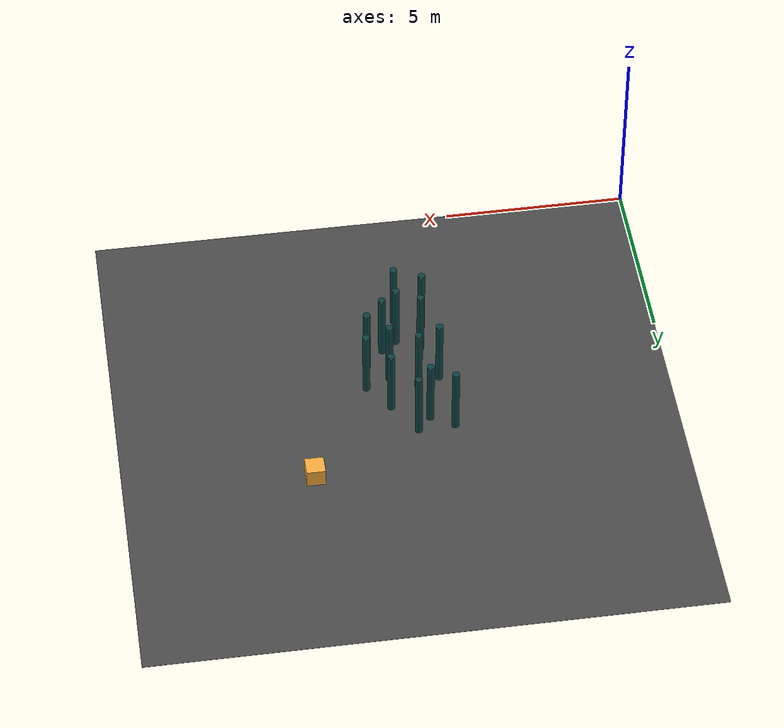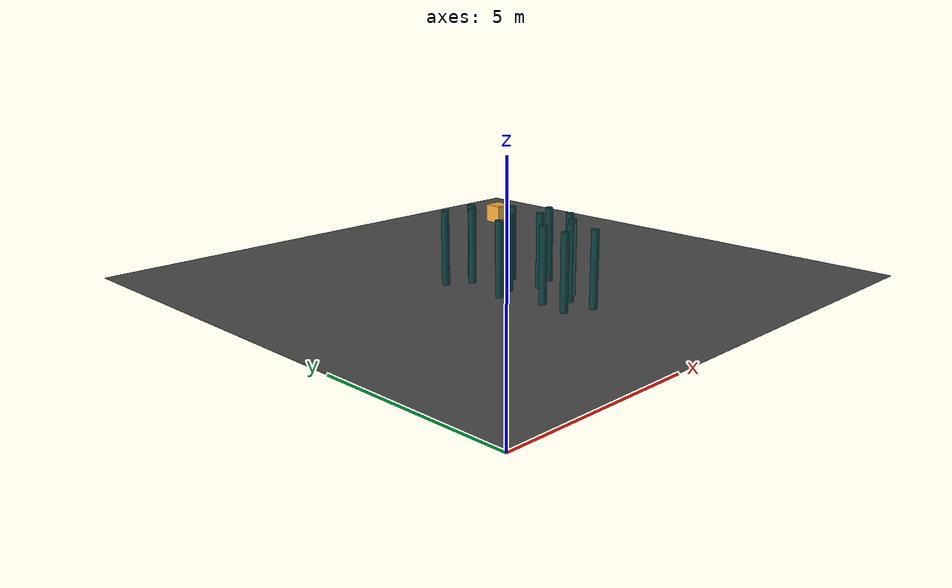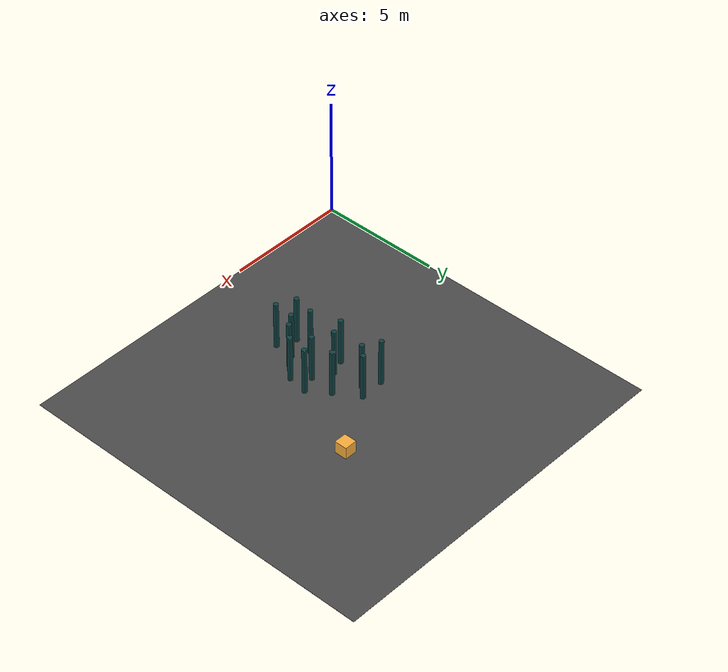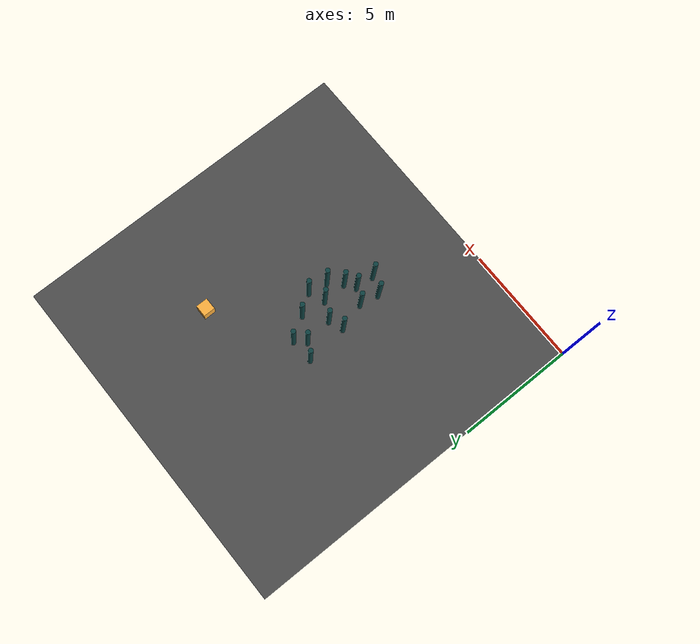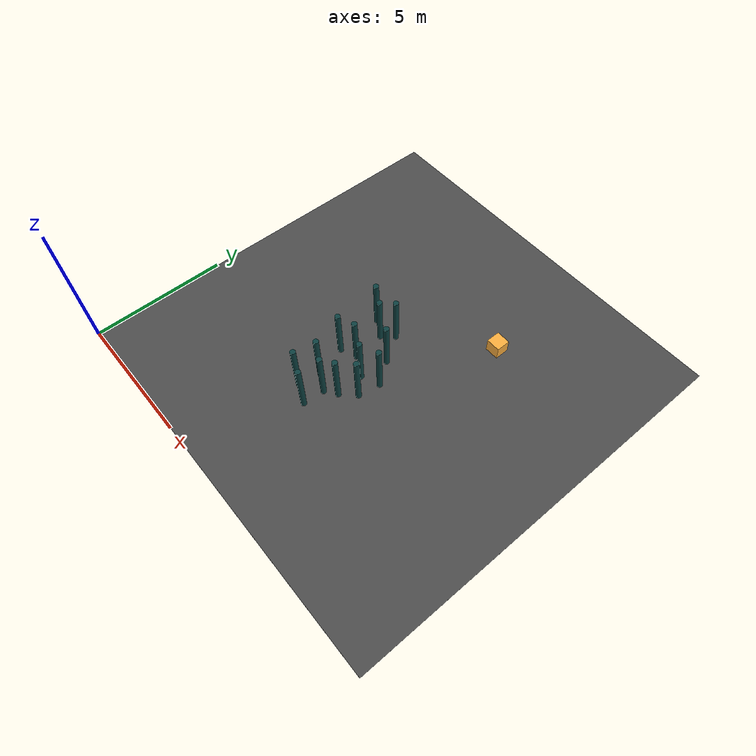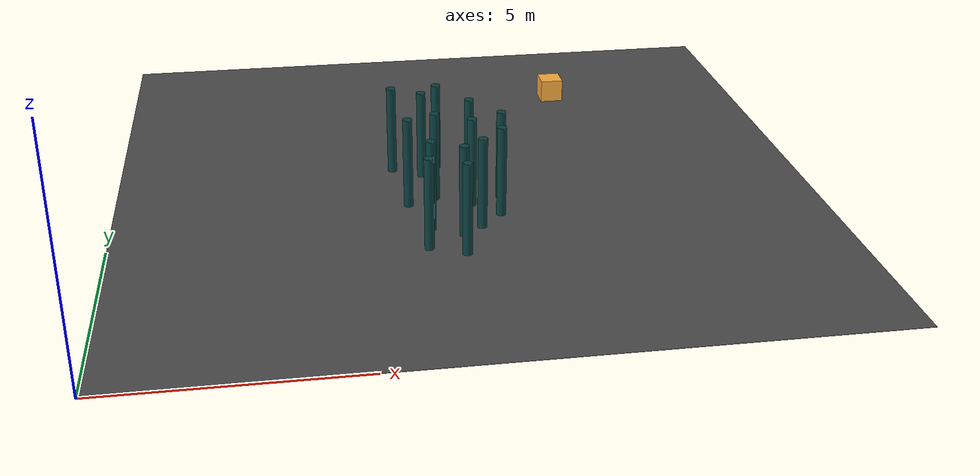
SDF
<sdf version="1.6">
 <world name="default">
  <model name="env_plane">
   <link name="link">
    <inertial>
     <mass>1</mass>
     <inertia><ixx>1</ixx><ixy>0</ixy><ixz>0</ixz><iyy>1</iyy><iyz>0</iyz><izz>1</izz></inertia>
    </inertial>
    <visual name="visual">
     <cast_shadows>0</cast_shadows>
     <geometry><box><size>15 15 0.01</size></box></geometry>
     <material>
      <script>
       <uri>model://asphalt_plane/materials/scripts</uri>
       <uri>model://asphalt_plane/materials/textures</uri>
       <name>vrc/asphalt</name>
      </script>
      <shader type="pixel"><normal_map>__default__</normal_map></shader>
      <diffuse>0.7 0.7 0.7 1</diffuse>
      <ambient>0.5 0.5 0.5 1</ambient>
      <specular>0.5 0.5 0.5 1</specular>
      <emissive>0.7 0.7 0.7 1</emissive>
     </material>
    </visual>
    <collision name="collision">
     <geometry><box><size>20 20 0.1</size></box></geometry>
     <surface>
      <friction>
       <ode><mu>1</mu><mu2>1</mu2><fdir1>0 0 0</fdir1><slip1>0</slip1><slip2>0</slip2></ode>
       <torsional>
        <coefficient>1</coefficient>
        <patch_radius>0</patch_radius>
        <surface_radius>0</surface_radius>
        <use_patch_radius>1</use_patch_radius>
        <ode><slip>0</slip></ode>
       </torsional>
      </friction>
      <bounce><restitution_coefficient>0</restitution_coefficient><threshold>1e+06</threshold></bounce>
      <contact>
       <collide_without_contact>0</collide_without_contact>
       <collide_without_contact_bitmask>1</collide_without_contact_bitmask>
       <collide_bitmask>1</collide_bitmask>
       <ode>
        <soft_cfm>0</soft_cfm>
        <soft_erp>0.2</soft_erp>
        <kp>1e+13</kp>
        <kd>1</kd>
        <max_vel>0.01</max_vel>
        <min_depth>0</min_depth>
       </ode>
       <bullet>
        <split_impulse>1</split_impulse>
        <split_impulse_penetration_threshold>-0.01</split_impulse_penetration_threshold>
        <soft_cfm>0</soft_cfm>
        <soft_erp>0.2</soft_erp>
        <kp>1e+13</kp>
        <kd>1</kd>
       </bullet>
      </contact>
     </surface>
    </collision>
   </link>
   <static>1</static>
   <pose>7.5 7.5 0 0 -0 0</pose>
  </model>
  <model name="obstacle">
   <link name="link">
    <inertial>
     <mass>112.569</mass>
     <inertia><ixx>33.2512</ixx><ixy>0</ixy><ixz>0</ixz><iyy>33.2512</iyy><iyz>0</iyz><izz>0.537779</izz></inertia>
    </inertial>
    <visual name="visual">
     <geometry><cylinder><radius>0.1</radius><length>2</length></cylinder></geometry>
     <material>
      <script><name>Gazebo/Grey</name><uri>file://media/materials/scripts/gazebo.material</uri></script>
      <shader type="pixel"><normal_map>__default__</normal_map></shader>
      <ambient>0.05 0.25 0.25 1</ambient>
      <diffuse>0.3 0.3 0.3 1</diffuse>
      <specular>0.01 0.01 0.01 1</specular>
      <emissive>0.1 0.1 0.1 1</emissive>
      <lighting>1</lighting>
     </material>
    </visual>
    <collision name="collision">
     <geometry><cylinder><radius>0.097748</radius><length>1.87509</length></cylinder></geometry>
     <surface>
      <friction>
       <ode><mu>1</mu><mu2>1</mu2><fdir1>0 0 0</fdir1><slip1>0</slip1><slip2>0</slip2></ode>
       <torsional>
        <coefficient>1</coefficient>
        <patch_radius>0</patch_radius>
        <surface_radius>0</surface_radius>
        <use_patch_radius>1</use_patch_radius>
        <ode><slip>0</slip></ode>
       </torsional>
      </friction>
      <bounce><restitution_coefficient>0</restitution_coefficient><threshold>1e+06</threshold></bounce>
      <contact>
       <collide_without_contact>0</collide_without_contact>
       <collide_without_contact_bitmask>1</collide_without_contact_bitmask>
       <collide_bitmask>1</collide_bitmask>
       <ode>
        <soft_cfm>0</soft_cfm>
        <soft_erp>0.2</soft_erp>
        <kp>1e+13</kp>
        <kd>1</kd>
        <max_vel>0.01</max_vel>
        <min_depth>0</min_depth>
       </ode>
       <bullet>
        <split_impulse>1</split_impulse>
        <split_impulse_penetration_threshold>-0.01</split_impulse_penetration_threshold>
        <soft_cfm>0</soft_cfm>
        <soft_erp>0.2</soft_erp>
        <kp>1e+13</kp>
        <kd>1</kd>
       </bullet>
      </contact>
     </surface>
    </collision>
   </link>
   <static>0</static>
   <pose>8.04155 5.51694 0.987541 -5.2e-05 2.2e-05 0.010854</pose>
  </model>
  <model name="obstacle_clone_2">
   <link name="link">
    <inertial>
     <mass>112.569</mass>
     <inertia><ixx>33.2512</ixx><ixy>0</ixy><ixz>0</ixz><iyy>33.2512</iyy><iyz>0</iyz><izz>0.537779</izz></inertia>
    </inertial>
    <visual name="visual">
     <geometry><cylinder><radius>0.1</radius><length>2</length></cylinder></geometry>
     <material>
      <script><name>Gazebo/Grey</name><uri>file://media/materials/scripts/gazebo.material</uri></script>
      <shader type="pixel"><normal_map>__default__</normal_map></shader>
      <ambient>0.05 0.25 0.25 1</ambient>
      <diffuse>0.3 0.3 0.3 1</diffuse>
      <specular>0.01 0.01 0.01 1</specular>
      <emissive>0.1 0.1 0.1 1</emissive>
      <lighting>1</lighting>
     </material>
    </visual>
    <collision name="collision">
     <geometry><cylinder><radius>0.097748</radius><length>1.87509</length></cylinder></geometry>
     <surface>
      <friction>
       <ode><mu>1</mu><mu2>1</mu2><fdir1>0 0 0</fdir1><slip1>0</slip1><slip2>0</slip2></ode>
       <torsional>
        <coefficient>1</coefficient>
        <patch_radius>0</patch_radius>
        <surface_radius>0</surface_radius>
        <use_patch_radius>1</use_patch_radius>
        <ode><slip>0</slip></ode>
       </torsional>
      </friction>
      <bounce><restitution_coefficient>0</restitution_coefficient><threshold>1e+06</threshold></bounce>
      <contact>
       <collide_without_contact>0</collide_without_contact>
       <collide_without_contact_bitmask>1</collide_without_contact_bitmask>
       <collide_bitmask>1</collide_bitmask>
       <ode>
        <soft_cfm>0</soft_cfm>
        <soft_erp>0.2</soft_erp>
        <kp>1e+13</kp>
        <kd>1</kd>
        <max_vel>0.01</max_vel>
        <min_depth>0</min_depth>
       </ode>
       <bullet>
        <split_impulse>1</split_impulse>
        <split_impulse_penetration_threshold>-0.01</split_impulse_penetration_threshold>
        <soft_cfm>0</soft_cfm>
        <soft_erp>0.2</soft_erp>
        <kp>1e+13</kp>
        <kd>1</kd>
       </bullet>
      </contact>
     </surface>
    </collision>
   </link>
   <static>0</static>
   <pose>7.50227 6.05734 0.987542 -6e-05 2.8e-05 0.008708</pose>
  </model>
  <model name="obstacle_clone_6">
   <link name="link">
    <inertial>
     <mass>112.569</mass>
     <inertia><ixx>33.2512</ixx><ixy>0</ixy><ixz>0</ixz><iyy>33.2512</iyy><iyz>0</iyz><izz>0.537779</izz></inertia>
    </inertial>
    <visual name="visual">
     <geometry><cylinder><radius>0.1</radius><length>2</length></cylinder></geometry>
     <material>
      <script><name>Gazebo/Grey</name><uri>file://media/materials/scripts/gazebo.material</uri></script>
      <shader type="pixel"><normal_map>__default__</normal_map></shader>
      <ambient>0.05 0.25 0.25 1</ambient>
      <diffuse>0.3 0.3 0.3 1</diffuse>
      <specular>0.01 0.01 0.01 1</specular>
      <emissive>0.1 0.1 0.1 1</emissive>
      <lighting>1</lighting>
     </material>
    </visual>
    <collision name="collision">
     <geometry><cylinder><radius>0.097748</radius><length>1.87509</length></cylinder></geometry>
     <surface>
      <friction>
       <ode><mu>1</mu><mu2>1</mu2><fdir1>0 0 0</fdir1><slip1>0</slip1><slip2>0</slip2></ode>
       <torsional>
        <coefficient>1</coefficient>
        <patch_radius>0</patch_radius>
        <surface_radius>0</surface_radius>
        <use_patch_radius>1</use_patch_radius>
        <ode><slip>0</slip></ode>
       </torsional>
      </friction>
      <bounce><restitution_coefficient>0</restitution_coefficient><threshold>1e+06</threshold></bounce>
      <contact>
       <collide_without_contact>0</collide_without_contact>
       <collide_without_contact_bitmask>1</collide_without_contact_bitmask>
       <collide_bitmask>1</collide_bitmask>
       <ode>
        <soft_cfm>0</soft_cfm>
        <soft_erp>0.2</soft_erp>
        <kp>1e+13</kp>
        <kd>1</kd>
        <max_vel>0.01</max_vel>
        <min_depth>0</min_depth>
       </ode>
       <bullet>
        <split_impulse>1</split_impulse>
        <split_impulse_penetration_threshold>-0.01</split_impulse_penetration_threshold>
        <soft_cfm>0</soft_cfm>
        <soft_erp>0.2</soft_erp>
        <kp>1e+13</kp>
        <kd>1</kd>
       </bullet>
      </contact>
     </surface>
    </collision>
   </link>
   <static>0</static>
   <pose>6.51285 5.05444 0.98755 -5.2e-05 2.5e-05 0.015599</pose>
  </model>
  <model name="obstacle_clone_9">
   <link name="link">
    <inertial>
     <mass>112.569</mass>
     <inertia><ixx>33.2512</ixx><ixy>0</ixy><ixz>0</ixz><iyy>33.2512</iyy><iyz>0</iyz><izz>0.537779</izz></inertia>
    </inertial>
    <visual name="visual">
     <geometry><cylinder><radius>0.1</radius><length>2</length></cylinder></geometry>
     <material>
      <script><name>Gazebo/Grey</name><uri>file://media/materials/scripts/gazebo.material</uri></script>
      <shader type="pixel"><normal_map>__default__</normal_map></shader>
      <ambient>0.05 0.25 0.25 1</ambient>
      <diffuse>0.3 0.3 0.3 1</diffuse>
      <specular>0.01 0.01 0.01 1</specular>
      <emissive>0.1 0.1 0.1 1</emissive>
      <lighting>1</lighting>
     </material>
    </visual>
    <collision name="collision">
     <geometry><cylinder><radius>0.097748</radius><length>1.87509</length></cylinder></geometry>
     <surface>
      <friction>
       <ode><mu>1</mu><mu2>1</mu2><fdir1>0 0 0</fdir1><slip1>0</slip1><slip2>0</slip2></ode>
       <torsional>
        <coefficient>1</coefficient>
        <patch_radius>0</patch_radius>
        <surface_radius>0</surface_radius>
        <use_patch_radius>1</use_patch_radius>
        <ode><slip>0</slip></ode>
       </torsional>
      </friction>
      <bounce><restitution_coefficient>0</restitution_coefficient><threshold>1e+06</threshold></bounce>
      <contact>
       <collide_without_contact>0</collide_without_contact>
       <collide_without_contact_bitmask>1</collide_without_contact_bitmask>
       <collide_bitmask>1</collide_bitmask>
       <ode>
        <soft_cfm>0</soft_cfm>
        <soft_erp>0.2</soft_erp>
        <kp>1e+13</kp>
        <kd>1</kd>
        <max_vel>0.01</max_vel>
        <min_depth>0</min_depth>
       </ode>
       <bullet>
        <split_impulse>1</split_impulse>
        <split_impulse_penetration_threshold>-0.01</split_impulse_penetration_threshold>
        <soft_cfm>0</soft_cfm>
        <soft_erp>0.2</soft_erp>
        <kp>1e+13</kp>
        <kd>1</kd>
       </bullet>
      </contact>
     </surface>
    </collision>
   </link>
   <static>0</static>
   <pose>7.1421 4.71785 0.987552 -6.3e-05 2.8e-05 0.108669</pose>
  </model>
  <model name="obstacle_clone_14">
   <link name="link">
    <inertial>
     <mass>112.569</mass>
     <inertia><ixx>33.2512</ixx><ixy>0</ixy><ixz>0</ixz><iyy>33.2512</iyy><iyz>0</iyz><izz>0.537779</izz></inertia>
    </inertial>
    <visual name="visual">
     <geometry><cylinder><radius>0.1</radius><length>2</length></cylinder></geometry>
     <material>
      <script><name>Gazebo/Grey</name><uri>file://media/materials/scripts/gazebo.material</uri></script>
      <shader type="pixel"><normal_map>__default__</normal_map></shader>
      <ambient>0.05 0.25 0.25 1</ambient>
      <diffuse>0.3 0.3 0.3 1</diffuse>
      <specular>0.01 0.01 0.01 1</specular>
      <emissive>0.1 0.1 0.1 1</emissive>
      <lighting>1</lighting>
     </material>
    </visual>
    <collision name="collision">
     <geometry><cylinder><radius>0.097748</radius><length>1.87509</length></cylinder></geometry>
     <surface>
      <friction>
       <ode><mu>1</mu><mu2>1</mu2><fdir1>0 0 0</fdir1><slip1>0</slip1><slip2>0</slip2></ode>
       <torsional>
        <coefficient>1</coefficient>
        <patch_radius>0</patch_radius>
        <surface_radius>0</surface_radius>
        <use_patch_radius>1</use_patch_radius>
        <ode><slip>0</slip></ode>
       </torsional>
      </friction>
      <bounce><restitution_coefficient>0</restitution_coefficient><threshold>1e+06</threshold></bounce>
      <contact>
       <collide_without_contact>0</collide_without_contact>
       <collide_without_contact_bitmask>1</collide_without_contact_bitmask>
       <collide_bitmask>1</collide_bitmask>
       <ode>
        <soft_cfm>0</soft_cfm>
        <soft_erp>0.2</soft_erp>
        <kp>1e+13</kp>
        <kd>1</kd>
        <max_vel>0.01</max_vel>
        <min_depth>0</min_depth>
       </ode>
       <bullet>
        <split_impulse>1</split_impulse>
        <split_impulse_penetration_threshold>-0.01</split_impulse_penetration_threshold>
        <soft_cfm>0</soft_cfm>
        <soft_erp>0.2</soft_erp>
        <kp>1e+13</kp>
        <kd>1</kd>
       </bullet>
      </contact>
     </surface>
    </collision>
   </link>
   <static>0</static>
   <pose>6.9948 8.04761 0.987544 -3e-05 1.4e-05 0.013899</pose>
  </model>
  <model name="obstacle_clone_18">
   <link name="link">
    <inertial>
     <mass>112.569</mass>
     <inertia><ixx>33.2512</ixx><ixy>0</ixy><ixz>0</ixz><iyy>33.2512</iyy><iyz>0</iyz><izz>0.537779</izz></inertia>
    </inertial>
    <visual name="visual">
     <geometry><cylinder><radius>0.1</radius><length>2</length></cylinder></geometry>
     <material>
      <script><name>Gazebo/Grey</name><uri>file://media/materials/scripts/gazebo.material</uri></script>
      <shader type="pixel"><normal_map>__default__</normal_map></shader>
      <ambient>0.05 0.25 0.25 1</ambient>
      <diffuse>0.3 0.3 0.3 1</diffuse>
      <specular>0.01 0.01 0.01 1</specular>
      <emissive>0.1 0.1 0.1 1</emissive>
      <lighting>1</lighting>
     </material>
    </visual>
    <collision name="collision">
     <geometry><cylinder><radius>0.097748</radius><length>1.87509</length></cylinder></geometry>
     <surface>
      <friction>
       <ode><mu>1</mu><mu2>1</mu2><fdir1>0 0 0</fdir1><slip1>0</slip1><slip2>0</slip2></ode>
       <torsional>
        <coefficient>1</coefficient>
        <patch_radius>0</patch_radius>
        <surface_radius>0</surface_radius>
        <use_patch_radius>1</use_patch_radius>
        <ode><slip>0</slip></ode>
       </torsional>
      </friction>
      <bounce><restitution_coefficient>0</restitution_coefficient><threshold>1e+06</threshold></bounce>
      <contact>
       <collide_without_contact>0</collide_without_contact>
       <collide_without_contact_bitmask>1</collide_without_contact_bitmask>
       <collide_bitmask>1</collide_bitmask>
       <ode>
        <soft_cfm>0</soft_cfm>
        <soft_erp>0.2</soft_erp>
        <kp>1e+13</kp>
        <kd>1</kd>
        <max_vel>0.01</max_vel>
        <min_depth>0</min_depth>
       </ode>
       <bullet>
        <split_impulse>1</split_impulse>
        <split_impulse_penetration_threshold>-0.01</split_impulse_penetration_threshold>
        <soft_cfm>0</soft_cfm>
        <soft_erp>0.2</soft_erp>
        <kp>1e+13</kp>
        <kd>1</kd>
       </bullet>
      </contact>
     </surface>
    </collision>
   </link>
   <static>0</static>
   <pose>6.37048 4.24202 0.987551 -5.4e-05 2.5e-05 0.015671</pose>
  </model>
  <model name="obstacle_clone_20">
   <link name="link">
    <inertial>
     <mass>112.569</mass>
     <inertia><ixx>33.2512</ixx><ixy>0</ixy><ixz>0</ixz><iyy>33.2512</iyy><iyz>0</iyz><izz>0.537779</izz></inertia>
    </inertial>
    <visual name="visual">
     <geometry><cylinder><radius>0.1</radius><length>2</length></cylinder></geometry>
     <material>
      <script><name>Gazebo/Grey</name><uri>file://media/materials/scripts/gazebo.material</uri></script>
      <shader type="pixel"><normal_map>__default__</normal_map></shader>
      <ambient>0.05 0.25 0.25 1</ambient>
      <diffuse>0.3 0.3 0.3 1</diffuse>
      <specular>0.01 0.01 0.01 1</specular>
      <emissive>0.1 0.1 0.1 1</emissive>
      <lighting>1</lighting>
     </material>
    </visual>
    <collision name="collision">
     <geometry><cylinder><radius>0.097748</radius><length>1.87509</length></cylinder></geometry>
     <surface>
      <friction>
       <ode><mu>1</mu><mu2>1</mu2><fdir1>0 0 0</fdir1><slip1>0</slip1><slip2>0</slip2></ode>
       <torsional>
        <coefficient>1</coefficient>
        <patch_radius>0</patch_radius>
        <surface_radius>0</surface_radius>
        <use_patch_radius>1</use_patch_radius>
        <ode><slip>0</slip></ode>
       </torsional>
      </friction>
      <bounce><restitution_coefficient>0</restitution_coefficient><threshold>1e+06</threshold></bounce>
      <contact>
       <collide_without_contact>0</collide_without_contact>
       <collide_without_contact_bitmask>1</collide_without_contact_bitmask>
       <collide_bitmask>1</collide_bitmask>
       <ode>
        <soft_cfm>0</soft_cfm>
        <soft_erp>0.2</soft_erp>
        <kp>1e+13</kp>
        <kd>1</kd>
        <max_vel>0.01</max_vel>
        <min_depth>0</min_depth>
       </ode>
       <bullet>
        <split_impulse>1</split_impulse>
        <split_impulse_penetration_threshold>-0.01</split_impulse_penetration_threshold>
        <soft_cfm>0</soft_cfm>
        <soft_erp>0.2</soft_erp>
        <kp>1e+13</kp>
        <kd>1</kd>
       </bullet>
      </contact>
     </surface>
    </collision>
   </link>
   <static>0</static>
   <pose>7.56138 5.01862 0.987543 -2.7e-05 1.3e-05 0.005645</pose>
  </model>
  <model name="obstacle_clone_21">
   <link name="link">
    <inertial>
     <mass>112.569</mass>
     <inertia><ixx>33.2512</ixx><ixy>0</ixy><ixz>0</ixz><iyy>33.2512</iyy><iyz>0</iyz><izz>0.537779</izz></inertia>
    </inertial>
    <visual name="visual">
     <geometry><cylinder><radius>0.1</radius><length>2</length></cylinder></geometry>
     <material>
      <script><name>Gazebo/Grey</name><uri>file://media/materials/scripts/gazebo.material</uri></script>
      <shader type="pixel"><normal_map>__default__</normal_map></shader>
      <ambient>0.05 0.25 0.25 1</ambient>
      <diffuse>0.3 0.3 0.3 1</diffuse>
      <specular>0.01 0.01 0.01 1</specular>
      <emissive>0.1 0.1 0.1 1</emissive>
      <lighting>1</lighting>
     </material>
    </visual>
    <collision name="collision">
     <geometry><cylinder><radius>0.097748</radius><length>1.87509</length></cylinder></geometry>
     <surface>
      <friction>
       <ode><mu>1</mu><mu2>1</mu2><fdir1>0 0 0</fdir1><slip1>0</slip1><slip2>0</slip2></ode>
       <torsional>
        <coefficient>1</coefficient>
        <patch_radius>0</patch_radius>
        <surface_radius>0</surface_radius>
        <use_patch_radius>1</use_patch_radius>
        <ode><slip>0</slip></ode>
       </torsional>
      </friction>
      <bounce><restitution_coefficient>0</restitution_coefficient><threshold>1e+06</threshold></bounce>
      <contact>
       <collide_without_contact>0</collide_without_contact>
       <collide_without_contact_bitmask>1</collide_without_contact_bitmask>
       <collide_bitmask>1</collide_bitmask>
       <ode>
        <soft_cfm>0</soft_cfm>
        <soft_erp>0.2</soft_erp>
        <kp>1e+13</kp>
        <kd>1</kd>
        <max_vel>0.01</max_vel>
        <min_depth>0</min_depth>
       </ode>
       <bullet>
        <split_impulse>1</split_impulse>
        <split_impulse_penetration_threshold>-0.01</split_impulse_penetration_threshold>
        <soft_cfm>0</soft_cfm>
        <soft_erp>0.2</soft_erp>
        <kp>1e+13</kp>
        <kd>1</kd>
       </bullet>
      </contact>
     </surface>
    </collision>
   </link>
   <static>0</static>
   <pose>6.00064 8.00009 0.987551 -6e-05 2.7e-05 0.015691</pose>
  </model>
  <model name="obstacle_clone_24">
   <link name="link">
    <inertial>
     <mass>112.569</mass>
     <inertia><ixx>33.2512</ixx><ixy>0</ixy><ixz>0</ixz><iyy>33.2512</iyy><iyz>0</iyz><izz>0.537779</izz></inertia>
    </inertial>
    <visual name="visual">
     <geometry><cylinder><radius>0.1</radius><length>2</length></cylinder></geometry>
     <material>
      <script><name>Gazebo/Grey</name><uri>file://media/materials/scripts/gazebo.material</uri></script>
      <shader type="pixel"><normal_map>__default__</normal_map></shader>
      <ambient>0.05 0.25 0.25 1</ambient>
      <diffuse>0.3 0.3 0.3 1</diffuse>
      <specular>0.01 0.01 0.01 1</specular>
      <emissive>0.1 0.1 0.1 1</emissive>
      <lighting>1</lighting>
     </material>
    </visual>
    <collision name="collision">
     <geometry><cylinder><radius>0.097748</radius><length>1.87509</length></cylinder></geometry>
     <surface>
      <friction>
       <ode><mu>1</mu><mu2>1</mu2><fdir1>0 0 0</fdir1><slip1>0</slip1><slip2>0</slip2></ode>
       <torsional>
        <coefficient>1</coefficient>
        <patch_radius>0</patch_radius>
        <surface_radius>0</surface_radius>
        <use_patch_radius>1</use_patch_radius>
        <ode><slip>0</slip></ode>
       </torsional>
      </friction>
      <bounce><restitution_coefficient>0</restitution_coefficient><threshold>1e+06</threshold></bounce>
      <contact>
       <collide_without_contact>0</collide_without_contact>
       <collide_without_contact_bitmask>1</collide_without_contact_bitmask>
       <collide_bitmask>1</collide_bitmask>
       <ode>
        <soft_cfm>0</soft_cfm>
        <soft_erp>0.2</soft_erp>
        <kp>1e+13</kp>
        <kd>1</kd>
        <max_vel>0.01</max_vel>
        <min_depth>0</min_depth>
       </ode>
       <bullet>
        <split_impulse>1</split_impulse>
        <split_impulse_penetration_threshold>-0.01</split_impulse_penetration_threshold>
        <soft_cfm>0</soft_cfm>
        <soft_erp>0.2</soft_erp>
        <kp>1e+13</kp>
        <kd>1</kd>
       </bullet>
      </contact>
     </surface>
    </collision>
   </link>
   <static>0</static>
   <pose>6.62111 7.63805 0.987541 -5e-05 2.1e-05 0.015866</pose>
  </model>
  <model name="obstacle_clone_25">
   <link name="link">
    <inertial>
     <mass>112.569</mass>
     <inertia><ixx>33.2512</ixx><ixy>0</ixy><ixz>0</ixz><iyy>33.2512</iyy><iyz>0</iyz><izz>0.537779</izz></inertia>
    </inertial>
    <visual name="visual">
     <geometry><cylinder><radius>0.1</radius><length>2</length></cylinder></geometry>
     <material>
      <script><name>Gazebo/Grey</name><uri>file://media/materials/scripts/gazebo.material</uri></script>
      <shader type="pixel"><normal_map>__default__</normal_map></shader>
      <ambient>0.05 0.25 0.25 1</ambient>
      <diffuse>0.3 0.3 0.3 1</diffuse>
      <specular>0.01 0.01 0.01 1</specular>
      <emissive>0.1 0.1 0.1 1</emissive>
      <lighting>1</lighting>
     </material>
    </visual>
    <collision name="collision">
     <geometry><cylinder><radius>0.097748</radius><length>1.87509</length></cylinder></geometry>
     <surface>
      <friction>
       <ode><mu>1</mu><mu2>1</mu2><fdir1>0 0 0</fdir1><slip1>0</slip1><slip2>0</slip2></ode>
       <torsional>
        <coefficient>1</coefficient>
        <patch_radius>0</patch_radius>
        <surface_radius>0</surface_radius>
        <use_patch_radius>1</use_patch_radius>
        <ode><slip>0</slip></ode>
       </torsional>
      </friction>
      <bounce><restitution_coefficient>0</restitution_coefficient><threshold>1e+06</threshold></bounce>
      <contact>
       <collide_without_contact>0</collide_without_contact>
       <collide_without_contact_bitmask>1</collide_without_contact_bitmask>
       <collide_bitmask>1</collide_bitmask>
       <ode>
        <soft_cfm>0</soft_cfm>
        <soft_erp>0.2</soft_erp>
        <kp>1e+13</kp>
        <kd>1</kd>
        <max_vel>0.01</max_vel>
        <min_depth>0</min_depth>
       </ode>
       <bullet>
        <split_impulse>1</split_impulse>
        <split_impulse_penetration_threshold>-0.01</split_impulse_penetration_threshold>
        <soft_cfm>0</soft_cfm>
        <soft_erp>0.2</soft_erp>
        <kp>1e+13</kp>
        <kd>1</kd>
       </bullet>
      </contact>
     </surface>
    </collision>
   </link>
   <static>0</static>
   <pose>7.09066 3.92044 0.987543 -2.8e-05 1.2e-05 0.009215</pose>
  </model>
  <model name="obstacle_clone_27">
   <link name="link">
    <inertial>
     <mass>112.569</mass>
     <inertia><ixx>33.2512</ixx><ixy>0</ixy><ixz>0</ixz><iyy>33.2512</iyy><iyz>0</iyz><izz>0.537779</izz></inertia>
    </inertial>
    <visual name="visual">
     <geometry><cylinder><radius>0.1</radius><length>2</length></cylinder></geometry>
     <material>
      <script><name>Gazebo/Grey</name><uri>file://media/materials/scripts/gazebo.material</uri></script>
      <shader type="pixel"><normal_map>__default__</normal_map></shader>
      <ambient>0.05 0.25 0.25 1</ambient>
      <diffuse>0.3 0.3 0.3 1</diffuse>
      <specular>0.01 0.01 0.01 1</specular>
      <emissive>0.1 0.1 0.1 1</emissive>
      <lighting>1</lighting>
     </material>
    </visual>
    <collision name="collision">
     <geometry><cylinder><radius>0.097748</radius><length>1.87509</length></cylinder></geometry>
     <surface>
      <friction>
       <ode><mu>1</mu><mu2>1</mu2><fdir1>0 0 0</fdir1><slip1>0</slip1><slip2>0</slip2></ode>
       <torsional>
        <coefficient>1</coefficient>
        <patch_radius>0</patch_radius>
        <surface_radius>0</surface_radius>
        <use_patch_radius>1</use_patch_radius>
        <ode><slip>0</slip></ode>
       </torsional>
      </friction>
      <bounce><restitution_coefficient>0</restitution_coefficient><threshold>1e+06</threshold></bounce>
      <contact>
       <collide_without_contact>0</collide_without_contact>
       <collide_without_contact_bitmask>1</collide_without_contact_bitmask>
       <collide_bitmask>1</collide_bitmask>
       <ode>
        <soft_cfm>0</soft_cfm>
        <soft_erp>0.2</soft_erp>
        <kp>1e+13</kp>
        <kd>1</kd>
        <max_vel>0.01</max_vel>
        <min_depth>0</min_depth>
       </ode>
       <bullet>
        <split_impulse>1</split_impulse>
        <split_impulse_penetration_threshold>-0.01</split_impulse_penetration_threshold>
        <soft_cfm>0</soft_cfm>
        <soft_erp>0.2</soft_erp>
        <kp>1e+13</kp>
        <kd>1</kd>
       </bullet>
      </contact>
     </surface>
    </collision>
   </link>
   <static>0</static>
   <pose>7.59869 7.12175 0.987544 -3.2e-05 1.4e-05 0.007375</pose>
  </model>
  <model name="obstacle_clone_28">
   <link name="link">
    <inertial>
     <mass>112.569</mass>
     <inertia><ixx>33.2512</ixx><ixy>0</ixy><ixz>0</ixz><iyy>33.2512</iyy><iyz>0</iyz><izz>0.537779</izz></inertia>
    </inertial>
    <visual name="visual">
     <geometry><cylinder><radius>0.1</radius><length>2</length></cylinder></geometry>
     <material>
      <script><name>Gazebo/Grey</name><uri>file://media/materials/scripts/gazebo.material</uri></script>
      <shader type="pixel"><normal_map>__default__</normal_map></shader>
      <ambient>0.05 0.25 0.25 1</ambient>
      <diffuse>0.3 0.3 0.3 1</diffuse>
      <specular>0.01 0.01 0.01 1</specular>
      <emissive>0.1 0.1 0.1 1</emissive>
      <lighting>1</lighting>
     </material>
    </visual>
    <collision name="collision">
     <geometry><cylinder><radius>0.097748</radius><length>1.87509</length></cylinder></geometry>
     <surface>
      <friction>
       <ode><mu>1</mu><mu2>1</mu2><fdir1>0 0 0</fdir1><slip1>0</slip1><slip2>0</slip2></ode>
       <torsional>
        <coefficient>1</coefficient>
        <patch_radius>0</patch_radius>
        <surface_radius>0</surface_radius>
        <use_patch_radius>1</use_patch_radius>
        <ode><slip>0</slip></ode>
       </torsional>
      </friction>
      <bounce><restitution_coefficient>0</restitution_coefficient><threshold>1e+06</threshold></bounce>
      <contact>
       <collide_without_contact>0</collide_without_contact>
       <collide_without_contact_bitmask>1</collide_without_contact_bitmask>
       <collide_bitmask>1</collide_bitmask>
       <ode>
        <soft_cfm>0</soft_cfm>
        <soft_erp>0.2</soft_erp>
        <kp>1e+13</kp>
        <kd>1</kd>
        <max_vel>0.01</max_vel>
        <min_depth>0</min_depth>
       </ode>
       <bullet>
        <split_impulse>1</split_impulse>
        <split_impulse_penetration_threshold>-0.01</split_impulse_penetration_threshold>
        <soft_cfm>0</soft_cfm>
        <soft_erp>0.2</soft_erp>
        <kp>1e+13</kp>
        <kd>1</kd>
       </bullet>
      </contact>
     </surface>
    </collision>
   </link>
   <static>0</static>
   <pose>6.16851 6.2104 0.987551 -6.1e-05 2.8e-05 0.007189</pose>
  </model>
  <model name="obstacle_clone_29">
   <link name="link">
    <inertial>
     <mass>112.569</mass>
     <inertia><ixx>33.2512</ixx><ixy>0</ixy><ixz>0</ixz><iyy>33.2512</iyy><iyz>0</iyz><izz>0.537779</izz></inertia>
    </inertial>
    <visual name="visual">
     <geometry><cylinder><radius>0.1</radius><length>2</length></cylinder></geometry>
     <material>
      <script><name>Gazebo/Grey</name><uri>file://media/materials/scripts/gazebo.material</uri></script>
      <shader type="pixel"><normal_map>__default__</normal_map></shader>
      <ambient>0.05 0.25 0.25 1</ambient>
      <diffuse>0.3 0.3 0.3 1</diffuse>
      <specular>0.01 0.01 0.01 1</specular>
      <emissive>0.1 0.1 0.1 1</emissive>
      <lighting>1</lighting>
     </material>
    </visual>
    <collision name="collision">
     <geometry><cylinder><radius>0.097748</radius><length>1.87509</length></cylinder></geometry>
     <surface>
      <friction>
       <ode><mu>1</mu><mu2>1</mu2><fdir1>0 0 0</fdir1><slip1>0</slip1><slip2>0</slip2></ode>
       <torsional>
        <coefficient>1</coefficient>
        <patch_radius>0</patch_radius>
        <surface_radius>0</surface_radius>
        <use_patch_radius>1</use_patch_radius>
        <ode><slip>0</slip></ode>
       </torsional>
      </friction>
      <bounce><restitution_coefficient>0</restitution_coefficient><threshold>1e+06</threshold></bounce>
      <contact>
       <collide_without_contact>0</collide_without_contact>
       <collide_without_contact_bitmask>1</collide_without_contact_bitmask>
       <collide_bitmask>1</collide_bitmask>
       <ode>
        <soft_cfm>0</soft_cfm>
        <soft_erp>0.2</soft_erp>
        <kp>1e+13</kp>
        <kd>1</kd>
        <max_vel>0.01</max_vel>
        <min_depth>0</min_depth>
       </ode>
       <bullet>
        <split_impulse>1</split_impulse>
        <split_impulse_penetration_threshold>-0.01</split_impulse_penetration_threshold>
        <soft_cfm>0</soft_cfm>
        <soft_erp>0.2</soft_erp>
        <kp>1e+13</kp>
        <kd>1</kd>
       </bullet>
      </contact>
     </surface>
    </collision>
   </link>
   <static>0</static>
   <pose>8.16683 6.33784 0.987551 -5.8e-05 2.9e-05 0.015339</pose>
  </model>
  <model name="obstacle_clone_30">
   <link name="link">
    <inertial>
     <mass>112.569</mass>
     <inertia><ixx>33.2512</ixx><ixy>0</ixy><ixz>0</ixz><iyy>33.2512</iyy><iyz>0</iyz><izz>0.537779</izz></inertia>
    </inertial>
    <visual name="visual">
     <geometry><cylinder><radius>0.1</radius><length>2</length></cylinder></geometry>
     <material>
      <script><name>Gazebo/Grey</name><uri>file://media/materials/scripts/gazebo.material</uri></script>
      <shader type="pixel"><normal_map>__default__</normal_map></shader>
      <ambient>0.05 0.25 0.25 1</ambient>
      <diffuse>0.3 0.3 0.3 1</diffuse>
      <specular>0.01 0.01 0.01 1</specular>
      <emissive>0.1 0.1 0.1 1</emissive>
      <lighting>1</lighting>
     </material>
    </visual>
    <collision name="collision">
     <geometry><cylinder><radius>0.097748</radius><length>1.87509</length></cylinder></geometry>
     <surface>
      <friction>
       <ode><mu>1</mu><mu2>1</mu2><fdir1>0 0 0</fdir1><slip1>0</slip1><slip2>0</slip2></ode>
       <torsional>
        <coefficient>1</coefficient>
        <patch_radius>0</patch_radius>
        <surface_radius>0</surface_radius>
        <use_patch_radius>1</use_patch_radius>
        <ode><slip>0</slip></ode>
       </torsional>
      </friction>
      <bounce><restitution_coefficient>0</restitution_coefficient><threshold>1e+06</threshold></bounce>
      <contact>
       <collide_without_contact>0</collide_without_contact>
       <collide_without_contact_bitmask>1</collide_without_contact_bitmask>
       <collide_bitmask>1</collide_bitmask>
       <ode>
        <soft_cfm>0</soft_cfm>
        <soft_erp>0.2</soft_erp>
        <kp>1e+13</kp>
        <kd>1</kd>
        <max_vel>0.01</max_vel>
        <min_depth>0</min_depth>
       </ode>
       <bullet>
        <split_impulse>1</split_impulse>
        <split_impulse_penetration_threshold>-0.01</split_impulse_penetration_threshold>
        <soft_cfm>0</soft_cfm>
        <soft_erp>0.2</soft_erp>
        <kp>1e+13</kp>
        <kd>1</kd>
       </bullet>
      </contact>
     </surface>
    </collision>
   </link>
   <static>0</static>
   <pose>6.76485 6.44823 0.987542 -6.4e-05 3.1e-05 0.015153</pose>
  </model>
  <model name="destination">
   <link name="link">
    <inertial>
     <mass>0.0182097</mass>
     <inertia>
      <ixx>2.41e-05</ixx>
      <ixy>0</ixy>
      <ixz>0</ixz>
      <iyy>1.97e-05</iyy>
      <iyz>0</iyz>
      <izz>2.207e-05</izz>
     </inertia>
    </inertial>
    <gravity>0</gravity>
    <visual name="visual">
     <geometry><box><size>0.5 0.5 0.5</size></box></geometry>
     <material>
      <script><name>Gazebo/Grey</name><uri>file://media/materials/scripts/gazebo.material</uri></script>
      <shader type="pixel"><normal_map>__default__</normal_map></shader>
      <ambient>0.988 0.686 0.243 1</ambient>
      <diffuse>0.988 0.686 0.243 1</diffuse>
      <specular>0.988 0.686 0.243 1</specular>
      <emissive>0.988 0.686 0.243 1</emissive>
     </material>
    </visual>
    <collision name="collision">
     <geometry><box><size>0.5 0.5 0.5</size></box></geometry>
     <surface>
      <friction>
       <ode><mu>1</mu><mu2>1</mu2><fdir1>0 0 0</fdir1><slip1>0</slip1><slip2>0</slip2></ode>
       <torsional>
        <coefficient>1</coefficient>
        <patch_radius>0</patch_radius>
        <surface_radius>0</surface_radius>
        <use_patch_radius>1</use_patch_radius>
        <ode><slip>0</slip></ode>
       </torsional>
      </friction>
      <bounce><restitution_coefficient>0</restitution_coefficient><threshold>1e+06</threshold></bounce>
      <contact>
       <collide_without_contact>1</collide_without_contact>
       <collide_without_contact_bitmask>1</collide_without_contact_bitmask>
       <collide_bitmask>1</collide_bitmask>
       <ode>
        <soft_cfm>0</soft_cfm>
        <soft_erp>0.2</soft_erp>
        <kp>1e+13</kp>
        <kd>1</kd>
        <max_vel>0.01</max_vel>
        <min_depth>0</min_depth>
       </ode>
       <bullet>
        <split_impulse>1</split_impulse>
        <split_impulse_penetration_threshold>-0.01</split_impulse_penetration_threshold>
        <soft_cfm>0</soft_cfm>
        <soft_erp>0.2</soft_erp>
        <kp>1e+13</kp>
        <kd>1</kd>
       </bullet>
      </contact>
     </surface>
    </collision>
   </link>
   <static>0</static>
   <pose>10 10 1 0 -0 0</pose>
  </model>
 </world>
</sdf>
